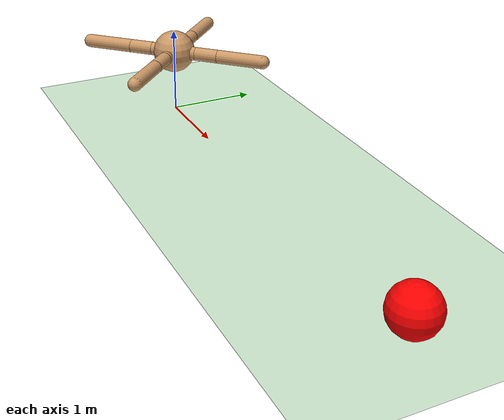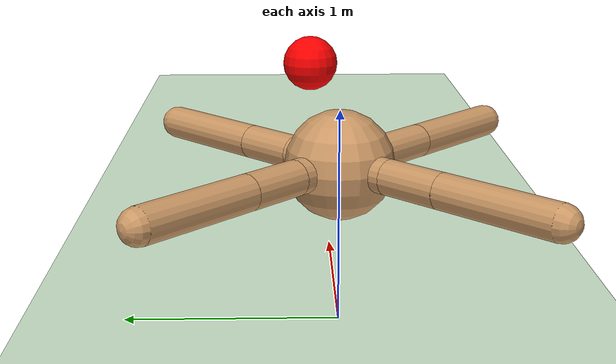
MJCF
<?xml version="1.0"?>
<mujoco model="AntReachTarget">
    <!-- ❶ global settings -->
    <option timestep="0.002" gravity="0 0 -9.81" integrator="RK4"/>
    <size nuserdata="0" nkey="0"/>

    <!-- ❷ include the stock Ant morphology shipped with MuJoCo -->
    <include file="/Users/qianjing/micromamba/envs/mujoco_env/lib/python3.10/site-packages/gymnasium/envs/mujoco/assets/ant.xml"/>

    <!-- ❸ world & task objects -->
    <worldbody>
        <!-- infinite plane -->
        <geom name="ground" type="plane" size="50 50 0.1" rgba="0.7 0.9 0.7 1"/>

        <!-- red target sphere ― body needed so we can query its pos -->
        <body name="target" pos="5 0 0.25">
            <geom type="sphere" size="0.25" rgba="1 0 0 1"/>
            <joint type="free"/>  <!-- free but massless so physics ignores -->
        </body>
    </worldbody>

    <!-- ❹ actuators: identical to stock Ant -->
    <actuator>
        <motor joint="hip_1"  ctrlrange="-1 1" gear="150"/>
        <motor joint="ankle_1" ctrlrange="-1 1" gear="150"/>
        <motor joint="hip_2"  ctrlrange="-1 1" gear="150"/>
        <motor joint="ankle_2" ctrlrange="-1 1" gear="150"/>
        <motor joint="hip_3"  ctrlrange="-1 1" gear="150"/>
        <motor joint="ankle_3" ctrlrange="-1 1" gear="150"/>
        <motor joint="hip_4"  ctrlrange="-1 1" gear="150"/>
        <motor joint="ankle_4" ctrlrange="-1 1" gear="150"/>
    </actuator>
</mujoco>

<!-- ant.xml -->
<mujoco model="ant">
  <compiler angle="degree" coordinate="local" inertiafromgeom="true"/>
  <option integrator="RK4" timestep="0.01"/>
  <custom>
    <numeric data="0.0 0.0 0.55 1.0 0.0 0.0 0.0 0.0 1.0 0.0 -1.0 0.0 -1.0 0.0 1.0" name="init_qpos"/>
  </custom>
  <default>
    <joint armature="1" damping="1" limited="true"/>
    <geom conaffinity="0" condim="3" density="5.0" friction="1 0.5 0.5" margin="0.01" rgba="0.8 0.6 0.4 1"/>
  </default>
  <asset>
    <texture builtin="gradient" height="100" rgb1="1 1 1" rgb2="0 0 0" type="skybox" width="100"/>
    <texture builtin="flat" height="1278" mark="cross" markrgb="1 1 1" name="texgeom" random="0.01" rgb1="0.8 0.6 0.4" rgb2="0.8 0.6 0.4" type="cube" width="127"/>
    <texture builtin="checker" height="100" name="texplane" rgb1="0 0 0" rgb2="0.8 0.8 0.8" type="2d" width="100"/>
    <material name="MatPlane" reflectance="0.5" shininess="1" specular="1" texrepeat="60 60" texture="texplane"/>
    <material name="geom" texture="texgeom" texuniform="true"/>
  </asset>
  <worldbody>
    <light cutoff="100" diffuse="1 1 1" dir="-0 0 -1.3" directional="true" exponent="1" pos="0 0 1.3" specular=".1 .1 .1"/>
    <geom conaffinity="1" condim="3" material="MatPlane" name="floor" pos="0 0 0" rgba="0.8 0.9 0.8 1" size="40 40 40" type="plane"/>
    <body name="torso" pos="0 0 0.75">
      <geom name="torso_geom" pos="0 0 0" size="0.25" type="sphere"/>
      <joint armature="0" damping="0" limited="false" margin="0.01" name="root" pos="0 0 0" type="free"/>
      <body name="front_left_leg" pos="0 0 0">
        <geom fromto="0.0 0.0 0.0 0.2 0.2 0.0" name="aux_1_geom" size="0.08" type="capsule"/>
        <body name="aux_1" pos="0.2 0.2 0">
          <joint axis="0 0 1" name="hip_1" pos="0.0 0.0 0.0" range="-30 30" type="hinge"/>
          <geom fromto="0.0 0.0 0.0 0.2 0.2 0.0" name="left_leg_geom" size="0.08" type="capsule"/>
          <body pos="0.2 0.2 0">
            <joint axis="-1 1 0" name="ankle_1" pos="0.0 0.0 0.0" range="30 70" type="hinge"/>
            <geom fromto="0.0 0.0 0.0 0.4 0.4 0.0" name="left_ankle_geom" size="0.08" type="capsule"/>
          </body>
        </body>
      </body>
      <body name="front_right_leg" pos="0 0 0">
        <geom fromto="0.0 0.0 0.0 -0.2 0.2 0.0" name="aux_2_geom" size="0.08" type="capsule"/>
        <body name="aux_2" pos="-0.2 0.2 0">
          <joint axis="0 0 1" name="hip_2" pos="0.0 0.0 0.0" range="-30 30" type="hinge"/>
          <geom fromto="0.0 0.0 0.0 -0.2 0.2 0.0" name="right_leg_geom" size="0.08" type="capsule"/>
          <body pos="-0.2 0.2 0">
            <joint axis="1 1 0" name="ankle_2" pos="0.0 0.0 0.0" range="-70 -30" type="hinge"/>
            <geom fromto="0.0 0.0 0.0 -0.4 0.4 0.0" name="right_ankle_geom" size="0.08" type="capsule"/>
          </body>
        </body>
      </body>
      <body name="back_leg" pos="0 0 0">
        <geom fromto="0.0 0.0 0.0 -0.2 -0.2 0.0" name="aux_3_geom" size="0.08" type="capsule"/>
        <body name="aux_3" pos="-0.2 -0.2 0">
          <joint axis="0 0 1" name="hip_3" pos="0.0 0.0 0.0" range="-30 30" type="hinge"/>
          <geom fromto="0.0 0.0 0.0 -0.2 -0.2 0.0" name="back_leg_geom" size="0.08" type="capsule"/>
          <body pos="-0.2 -0.2 0">
            <joint axis="-1 1 0" name="ankle_3" pos="0.0 0.0 0.0" range="-70 -30" type="hinge"/>
            <geom fromto="0.0 0.0 0.0 -0.4 -0.4 0.0" name="third_ankle_geom" size="0.08" type="capsule"/>
          </body>
        </body>
      </body>
      <body name="right_back_leg" pos="0 0 0">
        <geom fromto="0.0 0.0 0.0 0.2 -0.2 0.0" name="aux_4_geom" size="0.08" type="capsule"/>
        <body name="aux_4" pos="0.2 -0.2 0">
          <joint axis="0 0 1" name="hip_4" pos="0.0 0.0 0.0" range="-30 30" type="hinge"/>
          <geom fromto="0.0 0.0 0.0 0.2 -0.2 0.0" name="rightback_leg_geom" size="0.08" type="capsule"/>
          <body pos="0.2 -0.2 0">
            <joint axis="1 1 0" name="ankle_4" pos="0.0 0.0 0.0" range="30 70" type="hinge"/>
            <geom fromto="0.0 0.0 0.0 0.4 -0.4 0.0" name="fourth_ankle_geom" size="0.08" type="capsule"/>
          </body>
        </body>
      </body>
    </body>
  </worldbody>
  <actuator>
    <motor ctrllimited="true" ctrlrange="-1.0 1.0" joint="hip_4" gear="150"/>
    <motor ctrllimited="true" ctrlrange="-1.0 1.0" joint="ankle_4" gear="150"/>
    <motor ctrllimited="true" ctrlrange="-1.0 1.0" joint="hip_1" gear="150"/>
    <motor ctrllimited="true" ctrlrange="-1.0 1.0" joint="ankle_1" gear="150"/>
    <motor ctrllimited="true" ctrlrange="-1.0 1.0" joint="hip_2" gear="150"/>
    <motor ctrllimited="true" ctrlrange="-1.0 1.0" joint="ankle_2" gear="150"/>
    <motor ctrllimited="true" ctrlrange="-1.0 1.0" joint="hip_3" gear="150"/>
    <motor ctrllimited="true" ctrlrange="-1.0 1.0" joint="ankle_3" gear="150"/>
  </actuator>
</mujoco>
